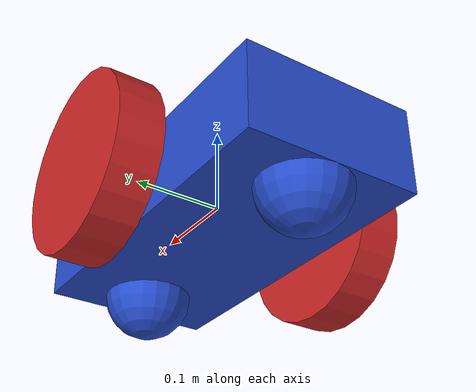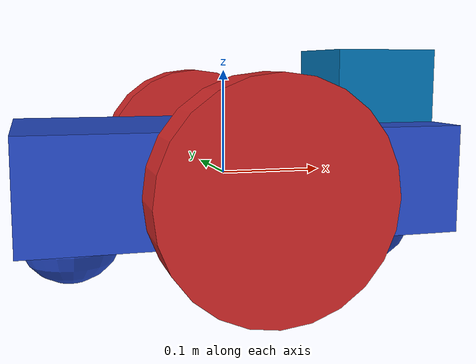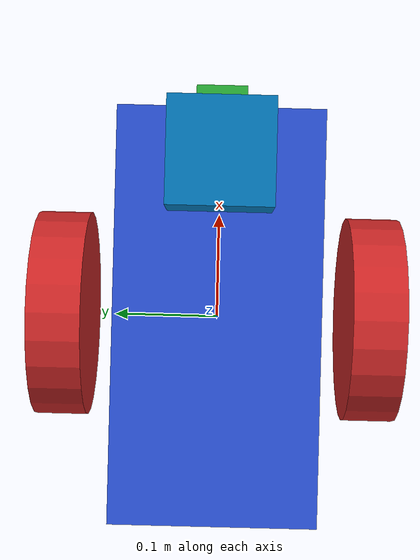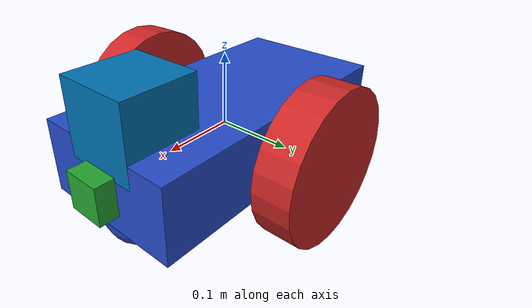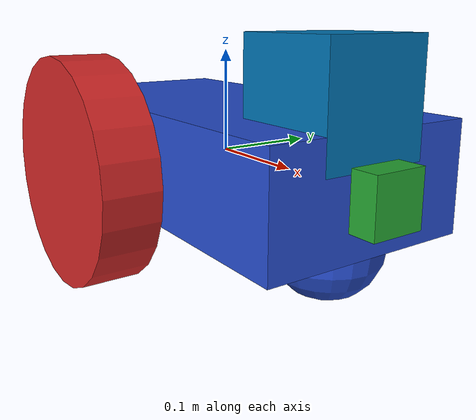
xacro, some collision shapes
<?xml version="1.0"?>

   <robot name="myfirst" xmlns:xacro="http://www.ros.org/wiki/xacro">

    <xacro:include filename="$(find robot_des)/models/models.gazebo"/>
    <xacro:include filename="$(find robot_des)/models/materials.xacro"/>
    <xacro:include filename="$(find robot_des)/models/param.xacro"/>

    <link name='chassis'>
        <pose>0 0 0.1 0 0 0</pose>

        <inertial>
          <mass value="5.0"/>
          <origin xyz="0.0 0 0.1" rpy=" 0 0 0"/>
          <inertia
              ixx="0.1" ixy="0" ixz="0"
              iyy="0.1" iyz="0"
              izz="0.1"
          />
        </inertial>

        <collision name='collision'>
          <geometry>
            <box size=".4 .2 .1"/>
          </geometry>
        </collision>

        <visual name='chassis_visual'>
          <origin xyz="0 0 0" rpy=" 0 0 0"/>
          <geometry>
            <box size=".4 .2 .1"/>
          </geometry>
          <material name="blue"/>
        </visual>
        <collision name='caster_collision'>
          <origin xyz="-0.15 0 -0.05" rpy=" 0 0 0"/>
          <geometry>
            <sphere radius="0.05"/>
          </geometry>
        </collision>

        <visual name='caster_visual'>
          <origin xyz="-0.15 0 -0.05" rpy=" 0 0 0"/>
          <geometry>
            <sphere radius="0.05"/>
          </geometry>
        </visual>

        <collision name='caster_front_collision'>
          <origin xyz="0.15 0 -0.05" rpy=" 0 0 0"/>
          <geometry>
            <sphere radius="0.05"/>
          </geometry>
        </collision>

        <visual name='caster_front_visual'>
          <origin xyz="0.15 0 -0.05" rpy=" 0 0 0"/>
          <geometry>
            <sphere radius="0.05"/>
          </geometry>
        </visual>

      </link>

      <link name="left_wheel">
        <!--origin xyz="0.1 0.13 0.1" rpy="0 1.5707 1.5707"/-->
        <collision name="collision">
          <origin xyz="0 0 0" rpy="0 1.5707 1.5707"/>
          <geometry>
            <cylinder radius="0.1" length="0.05"/>
          </geometry>
        </collision>
        <visual name="left_wheel_visual">
          <origin xyz="0 0 0" rpy="0 1.5707 1.5707"/>
          <geometry>
            <cylinder radius="0.1" length="0.05"/>
          </geometry>
          <material name="red"/>
        </visual>
        <inertial>
          <origin xyz="0 0 0" rpy="0 1.5707 1.5707"/>
          <mass value="5"/>
          <inertia
            ixx=".1" ixy="0.0" ixz="0.0"
            iyy=".1" iyz="0.0"
            izz=".1"/>
        </inertial>
      </link>

      <link name="right_wheel">
        <!--origin xyz="0.1 -0.13 0.1" rpy="0 1.5707 1.5707"/-->
        <collision name="collision">
          <origin xyz="0 0 0" rpy="0 1.5707 1.5707"/>
          <geometry>
            <cylinder radius="0.1" length="0.05"/>
          </geometry>
        </collision>
        <visual name="right_wheel_visual">
          <origin xyz="0 0 0" rpy="0 1.5707 1.5707"/>
          <geometry>
            <cylinder radius="0.1" length="0.05"/>
          </geometry>
          <material name="red"/>
        </visual>
        <inertial>
          <origin xyz="0 0 0" rpy="0 1.5707 1.5707"/>
          <mass value="5"/>
          <inertia
            ixx=".1" ixy="0.0" ixz="0.0"
            iyy=".1" iyz="0.0"
            izz=".1"/>
        </inertial>
      </link>

      <joint type="continuous" name="left_wheel_hinge">
        <origin xyz="0 0.15 0" rpy="0 0 0"/>
        <!--origin xyz="0.1 0.13 0" rpy="0 1.5707 1.5707"/-->
        <child link="left_wheel"/>
        <parent link="chassis"/>
        <axis xyz="0 1 0" rpy="0 0 0"/>
        <joint_properties damping="0.0" friction="0.0"/>
      </joint>

      <joint type="continuous" name="right_wheel_hinge">
        <origin xyz="0 -0.15 0" rpy="0 0 0"/>
        <!--origin xyz="0.1 -0.13 0" rpy="0 1.5707 1.5707"/-->
        <child link="right_wheel"/>
        <parent link="chassis"/>
        <axis xyz="0 1 0" rpy="0 0 0"/>
        <joint_properties damping="0.0" friction="0.0"/>
      </joint>

      <link name="camera">
        <collision>
          <origin xyz="0 0 0" rpy="0 0 0"/>
          <geometry>
            <box size="${cameraSize} ${cameraSize} ${cameraSize}"/>
          </geometry>
        </collision>

        <visual>
          <origin xyz="0 0 0" rpy="0 0 0"/>
          <geometry>
            <box size="${cameraSize} ${cameraSize} ${cameraSize}"/>
          </geometry>
          <material name="green"/>
        </visual>

        <inertial>
          <mass value="${cameraMass}" />
          <origin xyz="0 0 0" rpy="0 0 0"/>
          <box_inertia m="${cameraMass}" x="${cameraSize}" y="${cameraSize}" z="${cameraSize}" />
          <inertia ixx="1e-6" ixy="0" ixz="0" iyy="1e-6" iyz="0" izz="1e-6" />
        </inertial>
      </link>

      <joint name="camera_joint" type="fixed">
        <axis xyz="0 1 0" />
        <origin xyz=".2 0 0" rpy="0 0 0"/>
        <parent link="chassis"/>
        <child link="camera"/>
      </joint>

      <!-- Hokuyo Laser -->
      <link name="hokuyo_link">
        <collision>
          <origin xyz="0 0 0" rpy="0 0 0"/>
          <geometry>
        <box size="0.1 0.1 0.1"/>
          </geometry>
        </collision>

        <visual>
          <origin xyz="0 0 0" rpy="0 0 0"/>
          <geometry>
            <mesh filename="package://robot_des/meshes/hokuyo.dae"/>
          </geometry>
        </visual>

        <inertial>
          <mass value="1e-5" />
          <origin xyz="0 0 0" rpy="0 0 0"/>
          <inertia ixx="1e-6" ixy="0" ixz="0" iyy="1e-6" iyz="0" izz="1e-6" />
        </inertial>
      </link>

      <joint name="hokuyo_joint" type="fixed">
        <axis xyz="0 1 0" />
        <origin xyz="0.15 0 0.07" rpy="0 0 0"/>
        <parent link="chassis"/>
        <child link="hokuyo_link"/>
      </joint>

  </robot>

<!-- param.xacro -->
<robot name="myfirst" xmlns:xacro="http://www.ros.org/wiki/xacro">

    <xacro:property name="cameraSize"  value="0.05"/>
    <xacro:property name="cameraMass"  value="0.1"/>
    <xacro:property name="height3"     value="0.05"/>
    <xacro:property name="axel_offset" value="1"/>

</robot>
